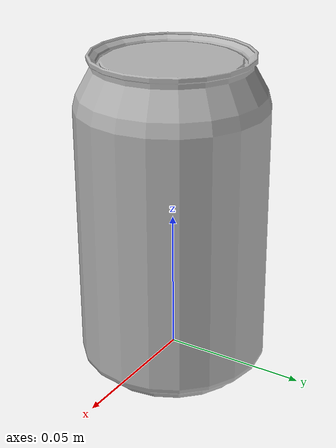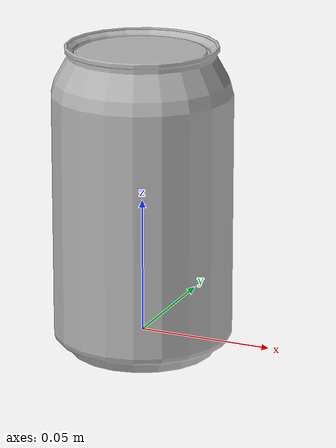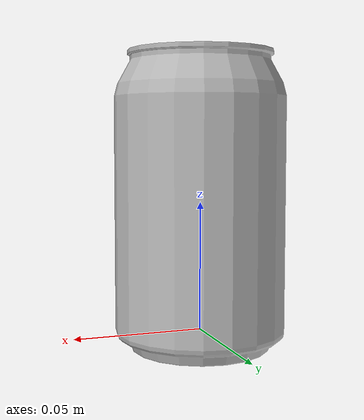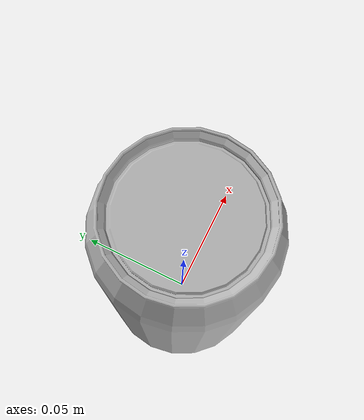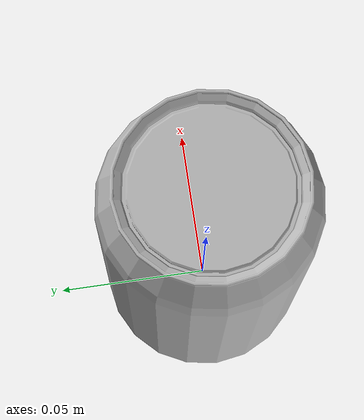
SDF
<?xml version="1.0" ?>
<sdf version="1.6">
  <model name='retro_pepsi_can'>
    <pose frame=''>0 0 0.05 0 0 0</pose>
    <link name='retro_pepsi_can_link'>
      <inertial>
        <pose>0 0 0 0 0 0 0</pose>
        <mass>0.390</mass>
        <inertia>
          <ixx>0.00055575</ixx>
          <ixy>0</ixy>
          <ixz>0</ixz>
          <iyy>0.00055575</iyy>
          <iyz>0</iyz>
          <izz>0.0001755</izz>
        </inertia>
        <pose>0 0 0.1 0 0 0</pose>
      </inertial>
      <collision name='collision'>
        <pose>0 0 0 0 0 0</pose>
        <geometry>
          <cylinder>
            <radius>0.033100</radius>
            <length>0.115000</length>
          </cylinder>
        </geometry>
        <max_contacts>10</max_contacts>
	<surface>
          <friction>
            <ode>
              <mu>1.0</mu>
              <mu2>1.0</mu2>
            </ode>
          </friction>
          <contact>
            <ode>
              <kp>10000000.0</kp>
              <kd>1.0</kd>
              <min_depth>0.001</min_depth>
              <max_vel>0.1</max_vel>
            </ode>
          </contact>
        </surface>
      </collision>
      <visual name='visual'>
        <geometry>
          <mesh>
            <uri>model://retro_pepsi_can/meshes/retro_pepsi_can.dae</uri>
            <scale>1 1 1</scale>
          </mesh>
        </geometry>
        <material>
        </material>
      </visual>
      <self_collide>0</self_collide>
      <enable_wind>0</enable_wind>
      <kinematic>0</kinematic>
    </link>
  </model>
</sdf>
